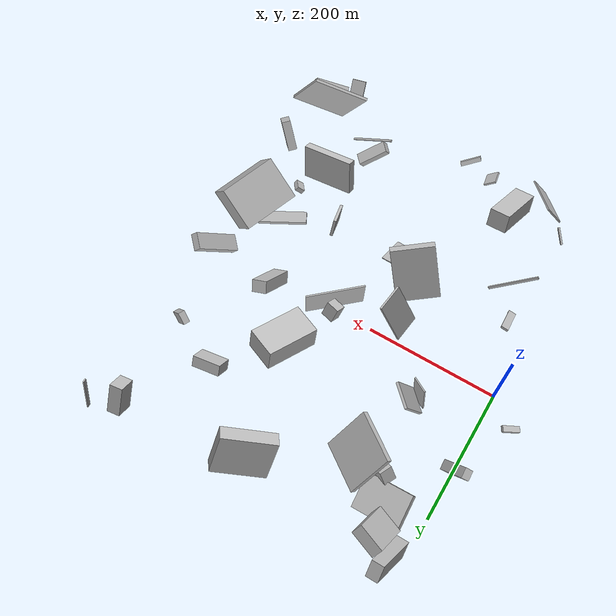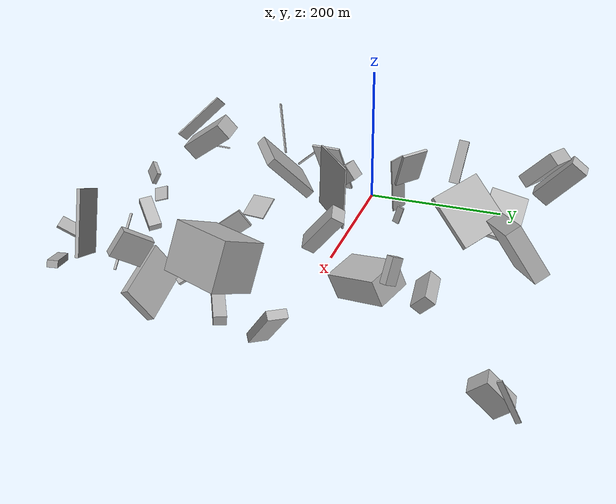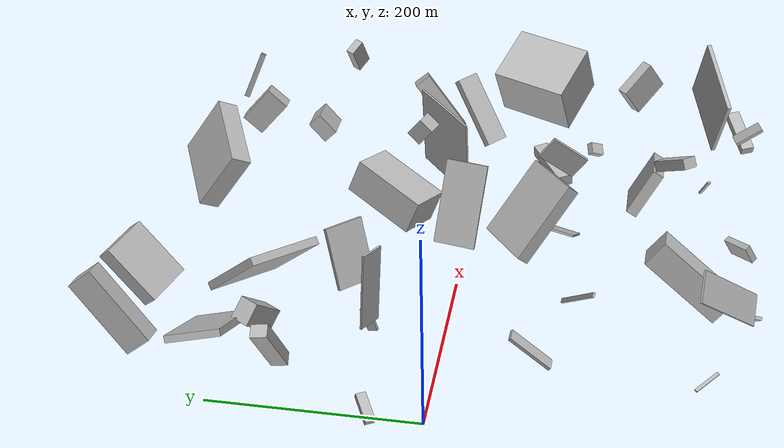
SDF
<sdf version="1.6">
 <world name="default">
  <scene>
   <sky><clouds><speed>12</speed></clouds></sky>
   <ambient>0.4 0.4 0.4 1</ambient>
   <background>0.7 0.7 0.7 1</background>
   <shadows>1</shadows>
  </scene>
  <gravity>0 0 -9.8066</gravity>
  <magnetic_field>6e-06 2.3e-05 -4.2e-05</magnetic_field>
  <physics default="0" name="default_physics" type="ode">
   <ode>
    <solver>
     <type>quick</type>
     <iters>10</iters>
     <sor>1.0</sor>
     <use_dynamic_moi_rescaling>0</use_dynamic_moi_rescaling>
    </solver>
    <constraints>
     <cfm>0</cfm>
     <erp>0.2</erp>
     <contact_max_correcting_vel>100</contact_max_correcting_vel>
     <contact_surface_layer>0.001</contact_surface_layer>
    </constraints>
   </ode>
   <max_step_size>0.004</max_step_size>
   <real_time_factor>1</real_time_factor>
   <real_time_update_rate>250</real_time_update_rate>
  </physics>
  <light name="sun" type="directional">
   <pose>0 0 10 0 0 0</pose>
   <diffuse>0.8 0.8 0.8 1</diffuse>
   <specular>0.2 0.2 0.2 1</specular>
   <attenuation>
    <range>1000</range>
    <constant>0.9</constant>
    <linear>0.01</linear>
    <quadratic>0.001</quadratic>
   </attenuation>
   <direction>-0.5 0.1 -0.9</direction>
  </light>
  <model name="building_1">
   <static>0</static>
   <pose>376.5387320194109 -192.81516935891358 47.74189280360076 2.6513566381231213 -0.30648227561912755 3.126687039625197</pose>
   <link name="link">
    <gravity>0</gravity>
    <pose>0 0 26.0 0 0 0</pose>
    <collision name="collision"><geometry><box><size>79 12 52</size></box></geometry></collision>
    <visual name="visual">
     <cast_shadows>0</cast_shadows>
     <geometry><box><size>79 12 52</size></box></geometry>
     <material>
      <script>
       <uri>model://HANNAS_wall/materials/scripts</uri>
       <uri>model://HANNAS_wall/materials/textures</uri>
       <name>vrc/HANNAS_wall</name>
      </script>
     </material>
    </visual>
   </link>
  </model>
  <model name="building_2">
   <static>0</static>
   <pose>149.66675196324405 -4.330718811108153 85.95556570989788 -0.4578980642128809 0.04021989769973918 -1.7126088997615823</pose>
   <link name="link">
    <gravity>0</gravity>
    <pose>0 0 39.5 0 0 0</pose>
    <collision name="collision"><geometry><box><size>39 3 79</size></box></geometry></collision>
    <visual name="visual">
     <cast_shadows>0</cast_shadows>
     <geometry><box><size>39 3 79</size></box></geometry>
     <material>
      <script>
       <uri>model://HANNAS_wall/materials/scripts</uri>
       <uri>model://HANNAS_wall/materials/textures</uri>
       <name>vrc/HANNAS_wall</name>
      </script>
     </material>
    </visual>
   </link>
  </model>
  <model name="building_3">
   <static>0</static>
   <pose>416.3116137071561 -155.13391541075308 100.35562728477382 0.09192680723557414 -0.9605079240155078 2.250536955979469</pose>
   <link name="link">
    <gravity>0</gravity>
    <pose>0 0 20.5 0 0 0</pose>
    <collision name="collision"><geometry><box><size>35 12 41</size></box></geometry></collision>
    <visual name="visual">
     <cast_shadows>0</cast_shadows>
     <geometry><box><size>35 12 41</size></box></geometry>
     <material>
      <script>
       <uri>model://HANNAS_wall/materials/scripts</uri>
       <uri>model://HANNAS_wall/materials/textures</uri>
       <name>vrc/HANNAS_wall</name>
      </script>
     </material>
    </visual>
   </link>
  </model>
  <model name="building_4">
   <static>0</static>
   <pose>442.2842903277021 18.379458859900268 53.36967139317707 1.387954706956419 -0.8651260923541412 0.866775437095962</pose>
   <link name="link">
    <gravity>0</gravity>
    <pose>0 0 12.0 0 0 0</pose>
    <collision name="collision"><geometry><box><size>80 11 24</size></box></geometry></collision>
    <visual name="visual">
     <cast_shadows>0</cast_shadows>
     <geometry><box><size>80 11 24</size></box></geometry>
     <material>
      <script>
       <uri>model://HANNAS_wall/materials/scripts</uri>
       <uri>model://HANNAS_wall/materials/textures</uri>
       <name>vrc/HANNAS_wall</name>
      </script>
     </material>
    </visual>
   </link>
  </model>
  <model name="building_5">
   <static>0</static>
   <pose>85.09821365868432 165.40752073472987 29.451216930106007 1.452394294662921 -0.7477027344418171 2.750471107396521</pose>
   <link name="link">
    <gravity>0</gravity>
    <pose>0 0 9.5 0 0 0</pose>
    <collision name="collision"><geometry><box><size>43 22 19</size></box></geometry></collision>
    <visual name="visual">
     <cast_shadows>0</cast_shadows>
     <geometry><box><size>43 22 19</size></box></geometry>
     <material>
      <script>
       <uri>model://HANNAS_wall/materials/scripts</uri>
       <uri>model://HANNAS_wall/materials/textures</uri>
       <name>vrc/HANNAS_wall</name>
      </script>
     </material>
    </visual>
   </link>
  </model>
  <model name="building_6">
   <static>0</static>
   <pose>216.47531614361267 -82.46363805574275 70.14951529186315 -1.6670188233972156 -0.534901457088559 2.9448336489727245</pose>
   <link name="link">
    <gravity>0</gravity>
    <pose>0 0 17.0 0 0 0</pose>
    <collision name="collision"><geometry><box><size>33 2 34</size></box></geometry></collision>
    <visual name="visual">
     <cast_shadows>0</cast_shadows>
     <geometry><box><size>33 2 34</size></box></geometry>
     <material>
      <script>
       <uri>model://HANNAS_wall/materials/scripts</uri>
       <uri>model://HANNAS_wall/materials/textures</uri>
       <name>vrc/HANNAS_wall</name>
      </script>
     </material>
    </visual>
   </link>
  </model>
  <model name="building_7">
   <static>0</static>
   <pose>349.1519339800792 40.0769458045945 121.09901260279646 -1.0381490496903925 -0.8944173743876204 1.3750592606770804</pose>
   <link name="link">
    <gravity>0</gravity>
    <pose>0 0 10.5 0 0 0</pose>
    <collision name="collision"><geometry><box><size>65 17 21</size></box></geometry></collision>
    <visual name="visual">
     <cast_shadows>0</cast_shadows>
     <geometry><box><size>65 17 21</size></box></geometry>
     <material>
      <script>
       <uri>model://HANNAS_wall/materials/scripts</uri>
       <uri>model://HANNAS_wall/materials/textures</uri>
       <name>vrc/HANNAS_wall</name>
      </script>
     </material>
    </visual>
   </link>
  </model>
  <model name="building_8">
   <static>0</static>
   <pose>97.75163969764145 81.78887648737555 104.8457262290286 1.9858148035984247 -0.061204697913157656 2.379735057936148</pose>
   <link name="link">
    <gravity>0</gravity>
    <pose>0 0 2.0 0 0 0</pose>
    <collision name="collision"><geometry><box><size>38 58 4</size></box></geometry></collision>
    <visual name="visual">
     <cast_shadows>0</cast_shadows>
     <geometry><box><size>38 58 4</size></box></geometry>
     <material>
      <script>
       <uri>model://HANNAS_wall/materials/scripts</uri>
       <uri>model://HANNAS_wall/materials/textures</uri>
       <name>vrc/HANNAS_wall</name>
      </script>
     </material>
    </visual>
   </link>
  </model>
  <model name="building_9">
   <static>0</static>
   <pose>435.2484745402614 -68.10177150195716 88.37176174332565 0.027398468823935058 -0.44297354903802116 -0.415686430657785</pose>
   <link name="link">
    <gravity>0</gravity>
    <pose>0 0 30.0 0 0 0</pose>
    <collision name="collision"><geometry><box><size>62 80 60</size></box></geometry></collision>
    <visual name="visual">
     <cast_shadows>0</cast_shadows>
     <geometry><box><size>62 80 60</size></box></geometry>
     <material>
      <script>
       <uri>model://HANNAS_wall/materials/scripts</uri>
       <uri>model://HANNAS_wall/materials/textures</uri>
       <name>vrc/HANNAS_wall</name>
      </script>
     </material>
    </visual>
   </link>
  </model>
  <model name="building_10">
   <static>0</static>
   <pose>307.80840580694894 -94.220653729504 89.84597705805137 -1.5235565204364638 0.6475268553811703 -1.3416268110726015</pose>
   <link name="link">
    <gravity>0</gravity>
    <pose>0 0 2.0 0 0 0</pose>
    <collision name="collision"><geometry><box><size>44 25 4</size></box></geometry></collision>
    <visual name="visual">
     <cast_shadows>0</cast_shadows>
     <geometry><box><size>44 25 4</size></box></geometry>
     <material>
      <script>
       <uri>model://HANNAS_wall/materials/scripts</uri>
       <uri>model://HANNAS_wall/materials/textures</uri>
       <name>vrc/HANNAS_wall</name>
      </script>
     </material>
    </visual>
   </link>
  </model>
  <model name="building_11">
   <static>0</static>
   <pose>221.58331760085937 238.02385669280088 83.20935629980245 1.2441941042821834 -0.5135783503864731 2.173153869589362</pose>
   <link name="link">
    <gravity>0</gravity>
    <pose>0 0 40.0 0 0 0</pose>
    <collision name="collision"><geometry><box><size>21 70 80</size></box></geometry></collision>
    <visual name="visual">
     <cast_shadows>0</cast_shadows>
     <geometry><box><size>21 70 80</size></box></geometry>
     <material>
      <script>
       <uri>model://HANNAS_wall/materials/scripts</uri>
       <uri>model://HANNAS_wall/materials/textures</uri>
       <name>vrc/HANNAS_wall</name>
      </script>
     </material>
    </visual>
   </link>
  </model>
  <model name="building_12">
   <static>0</static>
   <pose>33.02473193383387 -106.09523576480433 53.84399005883497 -0.1324278808143777 0.8457353994211904 1.4307977430285794</pose>
   <link name="link">
    <gravity>0</gravity>
    <pose>0 0 23.5 0 0 0</pose>
    <collision name="collision"><geometry><box><size>3 11 47</size></box></geometry></collision>
    <visual name="visual">
     <cast_shadows>0</cast_shadows>
     <geometry><box><size>3 11 47</size></box></geometry>
     <material>
      <script>
       <uri>model://HANNAS_wall/materials/scripts</uri>
       <uri>model://HANNAS_wall/materials/textures</uri>
       <name>vrc/HANNAS_wall</name>
      </script>
     </material>
    </visual>
   </link>
  </model>
  <model name="building_13">
   <static>0</static>
   <pose>418.410985910426 -270.80416729059675 68.4322756536264 1.4590961453479838 -0.3490041836469797 0.3654365128069129</pose>
   <link name="link">
    <gravity>0</gravity>
    <pose>0 0 6.5 0 0 0</pose>
    <collision name="collision"><geometry><box><size>50 9 13</size></box></geometry></collision>
    <visual name="visual">
     <cast_shadows>0</cast_shadows>
     <geometry><box><size>50 9 13</size></box></geometry>
     <material>
      <script>
       <uri>model://HANNAS_wall/materials/scripts</uri>
       <uri>model://HANNAS_wall/materials/textures</uri>
       <name>vrc/HANNAS_wall</name>
      </script>
     </material>
    </visual>
   </link>
  </model>
  <model name="building_14">
   <static>0</static>
   <pose>77.71037734247524 -111.03754125932996 90.1902066692028 0.7942949390937234 0.3624155410950222 -1.4314438691353</pose>
   <link name="link">
    <gravity>0</gravity>
    <pose>0 0 40.0 0 0 0</pose>
    <collision name="collision"><geometry><box><size>2 4 80</size></box></geometry></collision>
    <visual name="visual">
     <cast_shadows>0</cast_shadows>
     <geometry><box><size>2 4 80</size></box></geometry>
     <material>
      <script>
       <uri>model://HANNAS_wall/materials/scripts</uri>
       <uri>model://HANNAS_wall/materials/textures</uri>
       <name>vrc/HANNAS_wall</name>
      </script>
     </material>
    </visual>
   </link>
  </model>
  <model name="building_15">
   <static>0</static>
   <pose>126.48233606571036 175.3636577169349 66.14613375871507 2.8666892387662544 -0.7480276550443228 -2.017297737226729</pose>
   <link name="link">
    <gravity>0</gravity>
    <pose>0 0 4.0 0 0 0</pose>
    <collision name="collision"><geometry><box><size>80 78 8</size></box></geometry></collision>
    <visual name="visual">
     <cast_shadows>0</cast_shadows>
     <geometry><box><size>80 78 8</size></box></geometry>
     <material>
      <script>
       <uri>model://HANNAS_wall/materials/scripts</uri>
       <uri>model://HANNAS_wall/materials/textures</uri>
       <name>vrc/HANNAS_wall</name>
      </script>
     </material>
    </visual>
   </link>
  </model>
  <model name="building_16">
   <static>0</static>
   <pose>24.831067000078885 -238.99164845230177 60.38728226094727 2.754640809244668 0.3489939945909176 2.273993079291207</pose>
   <link name="link">
    <gravity>0</gravity>
    <pose>0 0 1.0 0 0 0</pose>
    <collision name="collision"><geometry><box><size>25 3 2</size></box></geometry></collision>
    <visual name="visual">
     <cast_shadows>0</cast_shadows>
     <geometry><box><size>25 3 2</size></box></geometry>
     <material>
      <script>
       <uri>model://HANNAS_wall/materials/scripts</uri>
       <uri>model://HANNAS_wall/materials/textures</uri>
       <name>vrc/HANNAS_wall</name>
      </script>
     </material>
    </visual>
   </link>
  </model>
  <model name="building_17">
   <static>0</static>
   <pose>383.5446728484776 -118.24286884642488 57.02994986244308 -2.176600009902402 -0.703608097491278 -2.0714460298904545</pose>
   <link name="link">
    <gravity>0</gravity>
    <pose>0 0 8.0 0 0 0</pose>
    <collision name="collision"><geometry><box><size>7 12 16</size></box></geometry></collision>
    <visual name="visual">
     <cast_shadows>0</cast_shadows>
     <geometry><box><size>7 12 16</size></box></geometry>
     <material>
      <script>
       <uri>model://HANNAS_wall/materials/scripts</uri>
       <uri>model://HANNAS_wall/materials/textures</uri>
       <name>vrc/HANNAS_wall</name>
      </script>
     </material>
    </visual>
   </link>
  </model>
  <model name="building_18">
   <static>0</static>
   <pose>277.05214523784514 89.07468189772815 44.353405236549484 1.7993948255106276 -0.29628984147049653 1.0846749602787846</pose>
   <link name="link">
    <gravity>0</gravity>
    <pose>0 0 23.5 0 0 0</pose>
    <collision name="collision"><geometry><box><size>80 36 47</size></box></geometry></collision>
    <visual name="visual">
     <cast_shadows>0</cast_shadows>
     <geometry><box><size>80 36 47</size></box></geometry>
     <material>
      <script>
       <uri>model://HANNAS_wall/materials/scripts</uri>
       <uri>model://HANNAS_wall/materials/textures</uri>
       <name>vrc/HANNAS_wall</name>
      </script>
     </material>
    </visual>
   </link>
  </model>
  <model name="building_19">
   <static>0</static>
   <pose>47.24735047919765 240.80352654229318 86.94937605583404 0.19011757155285308 -0.7252500545391213 -2.0666989215015206</pose>
   <link name="link">
    <gravity>0</gravity>
    <pose>0 0 29.5 0 0 0</pose>
    <collision name="collision"><geometry><box><size>19 42 59</size></box></geometry></collision>
    <visual name="visual">
     <cast_shadows>0</cast_shadows>
     <geometry><box><size>19 42 59</size></box></geometry>
     <material>
      <script>
       <uri>model://HANNAS_wall/materials/scripts</uri>
       <uri>model://HANNAS_wall/materials/textures</uri>
       <name>vrc/HANNAS_wall</name>
      </script>
     </material>
    </visual>
   </link>
  </model>
  <model name="building_20">
   <static>0</static>
   <pose>331.4192354044504 -240.09169502941498 54.29169404740955 2.4118100966181943 -0.0861231553652818 -1.4438585161118496</pose>
   <link name="link">
    <gravity>0</gravity>
    <pose>0 0 1.0 0 0 0</pose>
    <collision name="collision"><geometry><box><size>3 78 2</size></box></geometry></collision>
    <visual name="visual">
     <cast_shadows>0</cast_shadows>
     <geometry><box><size>3 78 2</size></box></geometry>
     <material>
      <script>
       <uri>model://HANNAS_wall/materials/scripts</uri>
       <uri>model://HANNAS_wall/materials/textures</uri>
       <name>vrc/HANNAS_wall</name>
      </script>
     </material>
    </visual>
   </link>
  </model>
  <model name="building_21">
   <static>0</static>
   <pose>53.39929632109847 -250.7318528098198 111.37471778158823 0.6217805089149749 -0.6766771781681037 2.2253188861501445</pose>
   <link name="link">
    <gravity>0</gravity>
    <pose>0 0 14.0 0 0 0</pose>
    <collision name="collision"><geometry><box><size>80 2 28</size></box></geometry></collision>
    <visual name="visual">
     <cast_shadows>0</cast_shadows>
     <geometry><box><size>80 2 28</size></box></geometry>
     <material>
      <script>
       <uri>model://HANNAS_wall/materials/scripts</uri>
       <uri>model://HANNAS_wall/materials/textures</uri>
       <name>vrc/HANNAS_wall</name>
      </script>
     </material>
    </visual>
   </link>
  </model>
  <model name="building_22">
   <static>0</static>
   <pose>419.55302656058296 -236.44113062219463 83.27875118565272 -0.04221471177589023 -0.4484148539786912 0.3296213165976053</pose>
   <link name="link">
    <gravity>0</gravity>
    <pose>0 0 40.0 0 0 0</pose>
    <collision name="collision"><geometry><box><size>80 4 80</size></box></geometry></collision>
    <visual name="visual">
     <cast_shadows>0</cast_shadows>
     <geometry><box><size>80 4 80</size></box></geometry>
     <material>
      <script>
       <uri>model://HANNAS_wall/materials/scripts</uri>
       <uri>model://HANNAS_wall/materials/textures</uri>
       <name>vrc/HANNAS_wall</name>
      </script>
     </material>
    </visual>
   </link>
  </model>
  <model name="building_23">
   <static>0</static>
   <pose>386.9066231539288 -71.57239374732825 27.04155113812909 -0.22034910847194797 1.4762924675453684 -1.3137870375818848</pose>
   <link name="link">
    <gravity>0</gravity>
    <pose>0 0 8.0 0 0 0</pose>
    <collision name="collision"><geometry><box><size>12 70 16</size></box></geometry></collision>
    <visual name="visual">
     <cast_shadows>0</cast_shadows>
     <geometry><box><size>12 70 16</size></box></geometry>
     <material>
      <script>
       <uri>model://HANNAS_wall/materials/scripts</uri>
       <uri>model://HANNAS_wall/materials/textures</uri>
       <name>vrc/HANNAS_wall</name>
      </script>
     </material>
    </visual>
   </link>
  </model>
  <model name="building_24">
   <static>0</static>
   <pose>198.0795464540277 -259.7253045610705 79.51418714911397 1.312163788316646 -0.4364089387818603 -0.7626568720385336</pose>
   <link name="link">
    <gravity>0</gravity>
    <pose>0 0 14.5 0 0 0</pose>
    <collision name="collision"><geometry><box><size>6 18 29</size></box></geometry></collision>
    <visual name="visual">
     <cast_shadows>0</cast_shadows>
     <geometry><box><size>6 18 29</size></box></geometry>
     <material>
      <script>
       <uri>model://HANNAS_wall/materials/scripts</uri>
       <uri>model://HANNAS_wall/materials/textures</uri>
       <name>vrc/HANNAS_wall</name>
      </script>
     </material>
    </visual>
   </link>
  </model>
  <model name="building_25">
   <static>0</static>
   <pose>159.58853692482694 -277.6120626238818 24.536311783401896 -0.8078018678494469 -0.3018685261109007 1.7319750985095312</pose>
   <link name="link">
    <gravity>0</gravity>
    <pose>0 0 10.0 0 0 0</pose>
    <collision name="collision"><geometry><box><size>20 3 20</size></box></geometry></collision>
    <visual name="visual">
     <cast_shadows>0</cast_shadows>
     <geometry><box><size>20 3 20</size></box></geometry>
     <material>
      <script>
       <uri>model://HANNAS_wall/materials/scripts</uri>
       <uri>model://HANNAS_wall/materials/textures</uri>
       <name>vrc/HANNAS_wall</name>
      </script>
     </material>
    </visual>
   </link>
  </model>
  <model name="building_26">
   <static>0</static>
   <pose>466.84742790672226 263.78971415332376 27.877915426292216 -1.3649800057271948 -0.7215264310741002 1.516048527497364</pose>
   <link name="link">
    <gravity>0</gravity>
    <pose>0 0 10.0 0 0 0</pose>
    <collision name="collision"><geometry><box><size>28 46 20</size></box></geometry></collision>
    <visual name="visual">
     <cast_shadows>0</cast_shadows>
     <geometry><box><size>28 46 20</size></box></geometry>
     <material>
      <script>
       <uri>model://HANNAS_wall/materials/scripts</uri>
       <uri>model://HANNAS_wall/materials/textures</uri>
       <name>vrc/HANNAS_wall</name>
      </script>
     </material>
    </visual>
   </link>
  </model>
  <model name="building_27">
   <static>0</static>
   <pose>299.36620196560807 -220.0690744139825 102.28263951452931 2.0996398259878757 -0.07694705236947091 2.310910224771151</pose>
   <link name="link">
    <gravity>0</gravity>
    <pose>0 0 22.0 0 0 0</pose>
    <collision name="collision"><geometry><box><size>16 11 44</size></box></geometry></collision>
    <visual name="visual">
     <cast_shadows>0</cast_shadows>
     <geometry><box><size>16 11 44</size></box></geometry>
     <material>
      <script>
       <uri>model://HANNAS_wall/materials/scripts</uri>
       <uri>model://HANNAS_wall/materials/textures</uri>
       <name>vrc/HANNAS_wall</name>
      </script>
     </material>
    </visual>
   </link>
  </model>
  <model name="building_28">
   <static>0</static>
   <pose>493.99194325404403 285.00816134290795 52.85619539008779 1.4542616269670599 0.40487711063121073 -1.4611423915412434</pose>
   <link name="link">
    <gravity>0</gravity>
    <pose>0 0 1.0 0 0 0</pose>
    <collision name="collision"><geometry><box><size>6 59 2</size></box></geometry></collision>
    <visual name="visual">
     <cast_shadows>0</cast_shadows>
     <geometry><box><size>6 59 2</size></box></geometry>
     <material>
      <script>
       <uri>model://HANNAS_wall/materials/scripts</uri>
       <uri>model://HANNAS_wall/materials/textures</uri>
       <name>vrc/HANNAS_wall</name>
      </script>
     </material>
    </visual>
   </link>
  </model>
  <model name="building_29">
   <static>0</static>
   <pose>15.831826413937684 256.14634266021756 47.42673549144332 -0.685733328338369 0.17397423606249923 -0.04500383435278885</pose>
   <link name="link">
    <gravity>0</gravity>
    <pose>0 0 40.0 0 0 0</pose>
    <collision name="collision"><geometry><box><size>19 27 80</size></box></geometry></collision>
    <visual name="visual">
     <cast_shadows>0</cast_shadows>
     <geometry><box><size>19 27 80</size></box></geometry>
     <material>
      <script>
       <uri>model://HANNAS_wall/materials/scripts</uri>
       <uri>model://HANNAS_wall/materials/textures</uri>
       <name>vrc/HANNAS_wall</name>
      </script>
     </material>
    </visual>
   </link>
  </model>
  <model name="building_30">
   <static>0</static>
   <pose>98.9218641701031 68.5255652870725 27.930898645435647 1.2385850929511177 -1.2937416646562907 1.6624016959186614</pose>
   <link name="link">
    <gravity>0</gravity>
    <pose>0 0 1.5 0 0 0</pose>
    <collision name="collision"><geometry><box><size>26 10 3</size></box></geometry></collision>
    <visual name="visual">
     <cast_shadows>0</cast_shadows>
     <geometry><box><size>26 10 3</size></box></geometry>
     <material>
      <script>
       <uri>model://HANNAS_wall/materials/scripts</uri>
       <uri>model://HANNAS_wall/materials/textures</uri>
       <name>vrc/HANNAS_wall</name>
      </script>
     </material>
    </visual>
   </link>
  </model>
  <model name="building_31">
   <static>0</static>
   <pose>242.1036473399739 45.09542157576356 145.72977869771842 0.07757691103615352 -0.6517819437261609 1.2608031725865942</pose>
   <link name="link">
    <gravity>0</gravity>
    <pose>0 0 10.5 0 0 0</pose>
    <collision name="collision"><geometry><box><size>16 18 21</size></box></geometry></collision>
    <visual name="visual">
     <cast_shadows>0</cast_shadows>
     <geometry><box><size>16 18 21</size></box></geometry>
     <material>
      <script>
       <uri>model://HANNAS_wall/materials/scripts</uri>
       <uri>model://HANNAS_wall/materials/textures</uri>
       <name>vrc/HANNAS_wall</name>
      </script>
     </material>
    </visual>
   </link>
  </model>
  <model name="building_32">
   <static>0</static>
   <pose>360.0368841266329 159.095105445731 68.15096808853559 -0.7414647851587006 0.2195215042073398 0.08471682307684567</pose>
   <link name="link">
    <gravity>0</gravity>
    <pose>0 0 12.5 0 0 0</pose>
    <collision name="collision"><geometry><box><size>42 16 25</size></box></geometry></collision>
    <visual name="visual">
     <cast_shadows>0</cast_shadows>
     <geometry><box><size>42 16 25</size></box></geometry>
     <material>
      <script>
       <uri>model://HANNAS_wall/materials/scripts</uri>
       <uri>model://HANNAS_wall/materials/textures</uri>
       <name>vrc/HANNAS_wall</name>
      </script>
     </material>
    </visual>
   </link>
  </model>
  <model name="building_33">
   <static>0</static>
   <pose>423.27814987306493 139.06735343858182 119.03365012743294 0.478082928824421 0.11592789929539411 -2.064676908279959</pose>
   <link name="link">
    <gravity>0</gravity>
    <pose>0 0 15.5 0 0 0</pose>
    <collision name="collision"><geometry><box><size>9 17 31</size></box></geometry></collision>
    <visual name="visual">
     <cast_shadows>0</cast_shadows>
     <geometry><box><size>9 17 31</size></box></geometry>
     <material>
      <script>
       <uri>model://HANNAS_wall/materials/scripts</uri>
       <uri>model://HANNAS_wall/materials/textures</uri>
       <name>vrc/HANNAS_wall</name>
      </script>
     </material>
    </visual>
   </link>
  </model>
  <model name="building_34">
   <static>0</static>
   <pose>192.52654791875193 -93.83595173088665 143.99791900268866 2.4006669570506554 -0.09711916420662232 -2.5354273349973435</pose>
   <link name="link">
    <gravity>0</gravity>
    <pose>0 0 40.0 0 0 0</pose>
    <collision name="collision"><geometry><box><size>62 13 80</size></box></geometry></collision>
    <visual name="visual">
     <cast_shadows>0</cast_shadows>
     <geometry><box><size>62 13 80</size></box></geometry>
     <material>
      <script>
       <uri>model://HANNAS_wall/materials/scripts</uri>
       <uri>model://HANNAS_wall/materials/textures</uri>
       <name>vrc/HANNAS_wall</name>
      </script>
     </material>
    </visual>
   </link>
  </model>
  <model name="building_35">
   <static>0</static>
   <pose>66.05760444072428 213.10366252969195 34.72598808320345 2.675111095700907 -0.2342963467863057 -1.5138833106942917</pose>
   <link name="link">
    <gravity>0</gravity>
    <pose>0 0 3.5 0 0 0</pose>
    <collision name="collision"><geometry><box><size>54 80 7</size></box></geometry></collision>
    <visual name="visual">
     <cast_shadows>0</cast_shadows>
     <geometry><box><size>54 80 7</size></box></geometry>
     <material>
      <script>
       <uri>model://HANNAS_wall/materials/scripts</uri>
       <uri>model://HANNAS_wall/materials/textures</uri>
       <name>vrc/HANNAS_wall</name>
      </script>
     </material>
    </visual>
   </link>
  </model>
  <model name="building_36">
   <static>0</static>
   <pose>116.74292003936998 -219.8384154386478 106.7512267050463 -1.2955709480114586 -0.6329550571728354 1.3591513039087133</pose>
   <link name="link">
    <gravity>0</gravity>
    <pose>0 0 14.5 0 0 0</pose>
    <collision name="collision"><geometry><box><size>80 26 29</size></box></geometry></collision>
    <visual name="visual">
     <cast_shadows>0</cast_shadows>
     <geometry><box><size>80 26 29</size></box></geometry>
     <material>
      <script>
       <uri>model://HANNAS_wall/materials/scripts</uri>
       <uri>model://HANNAS_wall/materials/textures</uri>
       <name>vrc/HANNAS_wall</name>
      </script>
     </material>
    </visual>
   </link>
  </model>
  <model name="building_37">
   <static>0</static>
   <pose>-7.225876460196981 131.78047358034368 72.49752633092065 -0.2992504769520649 1.0767087285027184 -0.2175338996378257</pose>
   <link name="link">
    <gravity>0</gravity>
    <pose>0 0 6.0 0 0 0</pose>
    <collision name="collision"><geometry><box><size>64 15 12</size></box></geometry></collision>
    <visual name="visual">
     <cast_shadows>0</cast_shadows>
     <geometry><box><size>64 15 12</size></box></geometry>
     <material>
      <script>
       <uri>model://HANNAS_wall/materials/scripts</uri>
       <uri>model://HANNAS_wall/materials/textures</uri>
       <name>vrc/HANNAS_wall</name>
      </script>
     </material>
    </visual>
   </link>
  </model>
  <model name="building_38">
   <static>0</static>
   <pose>-51.667652227146235 35.7798667672519 46.31404626046493 -0.21712180674626338 -1.14574607460726 -2.3720563866374236</pose>
   <link name="link">
    <gravity>0</gravity>
    <pose>0 0 13.5 0 0 0</pose>
    <collision name="collision"><geometry><box><size>5 9 27</size></box></geometry></collision>
    <visual name="visual">
     <cast_shadows>0</cast_shadows>
     <geometry><box><size>5 9 27</size></box></geometry>
     <material>
      <script>
       <uri>model://HANNAS_wall/materials/scripts</uri>
       <uri>model://HANNAS_wall/materials/textures</uri>
       <name>vrc/HANNAS_wall</name>
      </script>
     </material>
    </visual>
   </link>
  </model>
  <model name="building_39">
   <static>0</static>
   <pose>250.59048140463057 17.653502693845667 95.23516076534231 -0.04300349316307698 -0.007909583383665608 0.7003373419723676</pose>
   <link name="link">
    <gravity>0</gravity>
    <pose>0 0 40.0 0 0 0</pose>
    <collision name="collision"><geometry><box><size>80 2 80</size></box></geometry></collision>
    <visual name="visual">
     <cast_shadows>0</cast_shadows>
     <geometry><box><size>80 2 80</size></box></geometry>
     <material>
      <script>
       <uri>model://HANNAS_wall/materials/scripts</uri>
       <uri>model://HANNAS_wall/materials/textures</uri>
       <name>vrc/HANNAS_wall</name>
      </script>
     </material>
    </visual>
   </link>
  </model>
  <model name="building_40">
   <static>0</static>
   <pose>369.9999238102167 -282.53047290596254 94.02992798093806 -1.7563379788312272 -0.5513213952517284 -1.3075488981343197</pose>
   <link name="link">
    <gravity>0</gravity>
    <pose>0 0 10.0 0 0 0</pose>
    <collision name="collision"><geometry><box><size>30 3 20</size></box></geometry></collision>
    <visual name="visual">
     <cast_shadows>0</cast_shadows>
     <geometry><box><size>30 3 20</size></box></geometry>
     <material>
      <script>
       <uri>model://HANNAS_wall/materials/scripts</uri>
       <uri>model://HANNAS_wall/materials/textures</uri>
       <name>vrc/HANNAS_wall</name>
      </script>
     </material>
    </visual>
   </link>
  </model>
  <model name="building_41">
   <static>0</static>
   <pose>80.98687412859222 69.47931860815794 73.77807484889908 -3.0917500957481683 -1.4821880002444774 -0.5548383194451784</pose>
   <link name="link">
    <gravity>0</gravity>
    <pose>0 0 12.0 0 0 0</pose>
    <collision name="collision"><geometry><box><size>80 2 24</size></box></geometry></collision>
    <visual name="visual">
     <cast_shadows>0</cast_shadows>
     <geometry><box><size>80 2 24</size></box></geometry>
     <material>
      <script>
       <uri>model://HANNAS_wall/materials/scripts</uri>
       <uri>model://HANNAS_wall/materials/textures</uri>
       <name>vrc/HANNAS_wall</name>
      </script>
     </material>
    </visual>
   </link>
  </model>
 </world>
</sdf>
